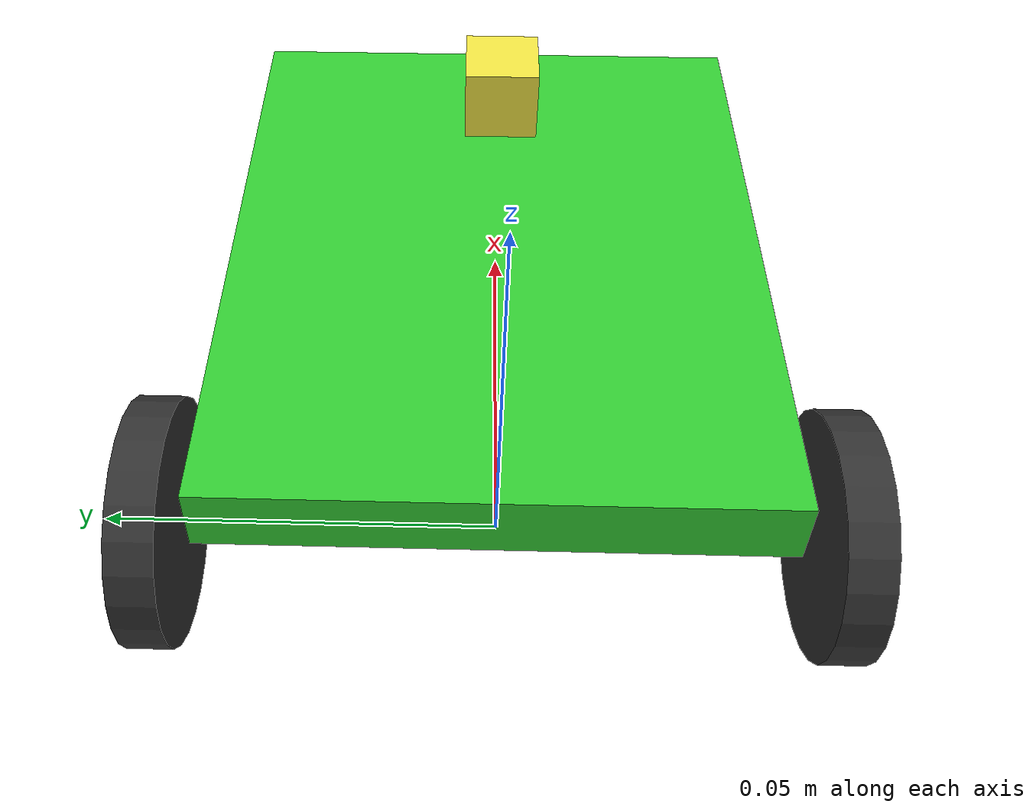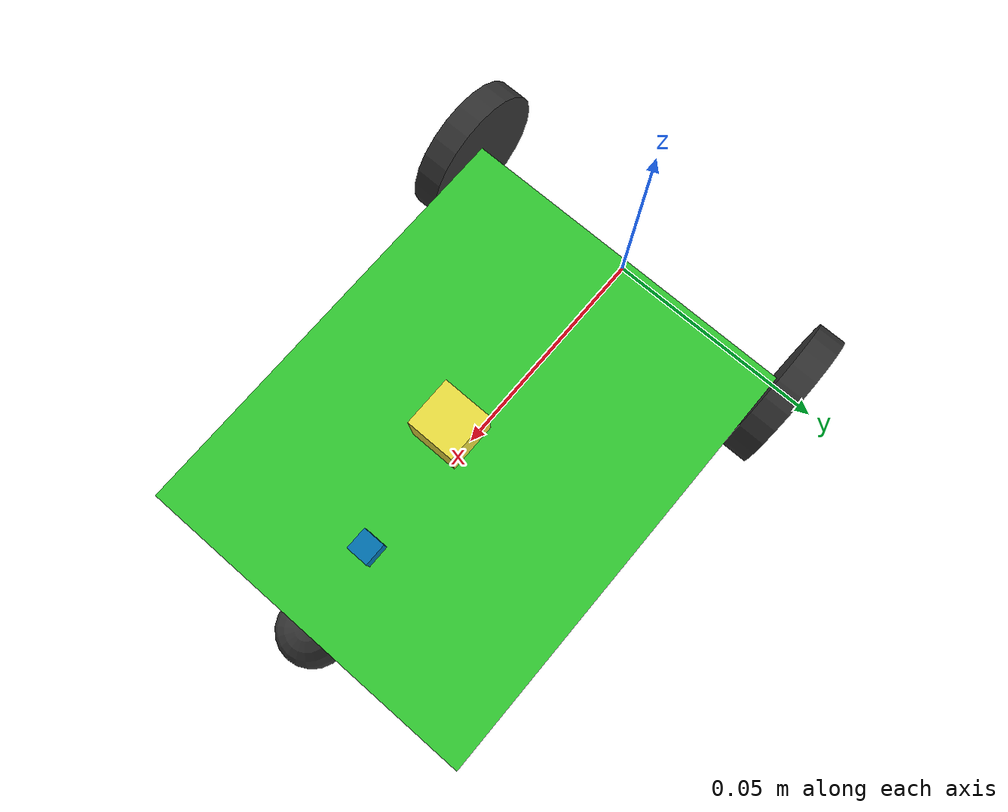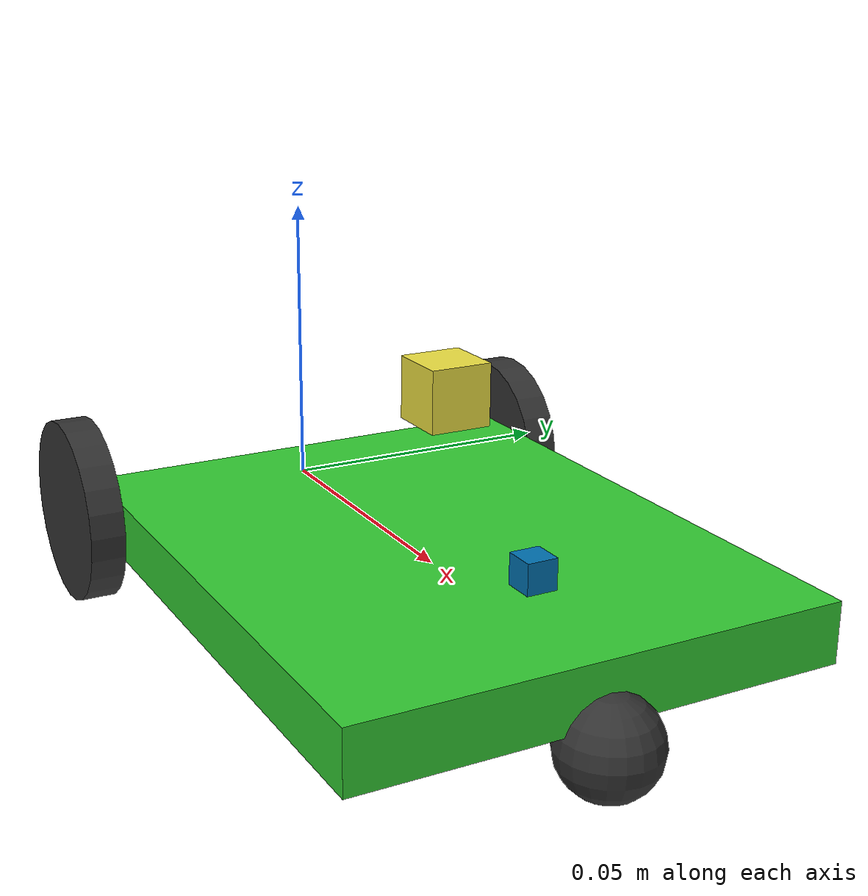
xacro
<?xml version="1.0"?>
<robot name="rosbot"
    xmlns:xacro="http://www.ros.org/wiki/xacro">
    <!-- INCLUDES -->
    <xacro:include filename="$(find rosbot)/urdf/parameters.xacro" />
    <!-- BASE LINK -->
    <link name="base_link">
        <material name="orange"/>
        <!-- pose and inertial -->
        <pose>0 0 0 0 0 0</pose>
        <inertial>
            <origin rpy="0 0 0" xyz="${base_size_x/2} 0 0"/>
            <mass value="${base_mass}"/>
            <xacro:box_inertia mass="${base_mass}" x="${base_size_x}" y="${base_size_y}" z="${base_size_z}"/>
        </inertial>
        <!-- body -->
        <collision name="base_front_collision">
            <origin rpy="0 0 0" xyz="${base_size_x/2} 0 0"/>
            <geometry>
                <box size="${base_size_x} ${base_size_y} ${base_size_z}"/>
            </geometry>
        </collision>
        <visual>
            <origin rpy="0 0 0" xyz="${base_size_x/2} 0 0"/>
            <geometry>
                <box size="${base_size_x} ${base_size_y} ${base_size_z}"/>
            </geometry>
            <material name="green"/>
        </visual>
        <!-- caster front -->
        <collision name="caster_front_collision">
            <origin rpy=" 0 0 0" xyz="${base_size_x} 0 ${-wheel_radius/2}"/>
            <geometry>
                <sphere radius="${wheel_radius/2}"/>
            </geometry>
            <contact_coefficients/>
            <surface>
                <contact>
                    <ode>
                        <kp>${caster_kp}</kp>
                        <kd>${caster_kd}</kd>
                    </ode>
                </contact>
                <friction>
                    <ode>
                        <mu>${caster_mu}</mu>
                        <mu2>${caster_mu2}</mu2>
                        <slip1>${caster_slip1}</slip1>
                        <slip2>${caster_slip2}</slip2>
                    </ode>
                </friction>
            </surface>
        </collision>
        <visual>
            <origin rpy=" 0 0 0" xyz="${base_size_x} 0 ${-wheel_radius/2}"/>
            <geometry>
                <sphere radius="${wheel_radius/2}"/>
            </geometry>
            <material name="gray"/>
        </visual>
    </link>
    <!-- LEFT WHEEL LINK -->
    <link name="left_wheel_link">
        <inertial>
            <mass value="${wheel_mass}"/>
            <origin rpy="0 1.5707 1.5707" xyz="0 0 0"/>
            <xacro:cylinder_inertia mass="${wheel_mass}" r="${wheel_radius}" l="${wheel_width}"/>
        </inertial>
        <collision name="left_wheel_collision">
            <origin rpy="0 1.5707 1.5707" xyz="0 0 0"/>
            <geometry>
                <cylinder radius="${wheel_radius}" length="${wheel_width}"/>
            </geometry>
            <surface>
                <contact>
                    <ode>
                        <kp>${wheel_kp}</kp>
                        <kd>${wheel_kd}</kd>
                    </ode>
                </contact>
                <friction>
                    <ode>
                        <mu>${wheel_mu}</mu>
                        <mu2>${wheel_mu2}</mu2>
                        <slip1>${wheel_slip1}</slip1>
                        <slip2>${wheel_slip2}</slip2>
                    </ode>
                </friction>
            </surface>
        </collision>
        <visual>
            <origin rpy="0 1.5707 1.5707" xyz="0 0 0"/>
            <geometry>
                <cylinder radius="${wheel_radius}" length="${wheel_width}"/>
            </geometry>
            <material name="gray"/>
        </visual>
    </link>
    <!-- LEFT WHEEL JOINT -->
    <joint name="left_motor" type="continuous">
        <origin rpy="0 0 0" xyz="0.0 ${base_size_y/2+wheel_width/2} 0.0"/>
        <child link="left_wheel_link"/>
        <parent link="base_link"/>
        <axis rpy="0 0 0" xyz="0 1 0"/>
        <dynamics damping="${motor_damping}" friction="${motor_friction}"/>
    </joint>
    <!-- RIGHT WHEEL LINK -->
    <link name="right_wheel_link">
        <inertial>
            <mass value="${wheel_mass}"/>
            <origin rpy="0 1.5707 1.5707" xyz="0 0 0"/>
            <xacro:cylinder_inertia mass="${wheel_mass}" r="${wheel_radius}" l="${wheel_width}"/>
        </inertial>
        <collision name="right_wheel_collision">
            <origin rpy="0 1.5707 1.5707" xyz="0 0 0"/>
            <geometry>
                <cylinder radius="${wheel_radius}" length="${wheel_width}"/>
            </geometry>
            <surface>
                <contact>
                    <ode>
                        <kp>${wheel_kp}</kp>
                        <kd>${wheel_kd}</kd>
                    </ode>
                </contact>
                <friction>
                    <ode>
                        <mu>${wheel_mu}</mu>
                        <mu2>${wheel_mu2}</mu2>
                        <slip1>${wheel_slip1}</slip1>
                        <slip2>${wheel_slip2}</slip2>
                    </ode>
                </friction>
            </surface>
        </collision>
        <visual>
            <origin rpy="0 1.5707 1.5707" xyz="0 0 0"/>
            <geometry>
                <cylinder radius="${wheel_radius}" length="${wheel_width}"/>
            </geometry>
            <material name="gray"/>
        </visual>
    </link>
    <!-- RIGHT WHEEL JOINT -->
    <joint name="right_motor" type="continuous">
        <origin rpy="0 0 0" xyz="0 ${-base_size_y/2-wheel_width/2} 0"/>
        <child link="right_wheel_link"/>
        <parent link="base_link"/>
        <axis rpy="0 0 0" xyz="0 1 0"/>
        <dynamics damping="${motor_damping}" friction="${motor_friction}"/>
    </joint>
    <!-- TRANSMISSIONS -->
    <transmission name="left_motor_transmission">
        <type>transmission_interface/SimpleTransmission</type>
        <joint name="left_motor">
            <hardwareInterface>hardware_interface/EffortJointInterface</hardwareInterface>
        </joint>
        <actuator name="left_motor">
            <hardwareInterface>EffortJointInterface</hardwareInterface>
            <mechanicalReduction>1</mechanicalReduction>
        </actuator>
    </transmission>
    <transmission name="right_motor_transmission">
        <type>transmission_interface/SimpleTransmission</type>
        <joint name="right_motor">
            <hardwareInterface>hardware_interface/EffortJointInterface</hardwareInterface>
        </joint>
        <actuator name="right_motor">
            <hardwareInterface>EffortJointInterface</hardwareInterface>
            <mechanicalReduction>1</mechanicalReduction>
        </actuator>
    </transmission>
    <!-- GAZEBO CONTROL -->
    <gazebo>
        <plugin name="differential_drive_controller" filename="libgazebo_ros_diff_drive.so">
            <rosDebugLevel>Debug</rosDebugLevel>
            <publishWheelTF>false</publishWheelTF>
            <robotNamespace>/</robotNamespace>
            <publishTf>1</publishTf>
            <publishWheelJointState>false</publishWheelJointState>
            <alwaysOn>true</alwaysOn>
            <updateRate>100.0</updateRate>
            <leftJoint>left_motor</leftJoint>
            <rightJoint>right_motor</rightJoint>
            <wheelSeparation>${base_size_y+wheel_width}</wheelSeparation>
            <wheelDiameter>${2*wheel_radius}</wheelDiameter>
            <broadcastTF>1</broadcastTF>
            <wheelTorque>0.1</wheelTorque>
            <wheelAcceleration>10</wheelAcceleration>
            <commandTopic>cmd_vel</commandTopic>
            <odometryFrame>odom</odometryFrame>
            <odometryTopic>odom</odometryTopic>
            <pose_covariance_diagonal>[1.0, 1.0, 0.0, 0.0, 0.0, 1.0]</pose_covariance_diagonal>
            <twist_covariance_diagonal>[0.01, 0.0, 0.0, 0.0, 0.0, 0.1]</twist_covariance_diagonal>
            <gaussianNoise>0.05</gaussianNoise>
            <robotBaseFrame>base_link</robotBaseFrame>
            <legacyMode>false</legacyMode>
            <publishOdomTF>true</publishOdomTF>
            <odometrySource>world</odometrySource>
        </plugin>
    </gazebo>
    <!-- GAZEBO LIDAR -->
    <link name="lidar_link">
        <visual>
            <origin xyz="0 0 0" rpy="0 0 0"/>
            <geometry>
                <box size="0.01 0.01 0.01"/>
            </geometry>
        </visual>
    </link>
    <joint name="laser_joint" type="fixed">
        <axis xyz="0 1 0" />
        <origin xyz="0.054 0.0 0.030" rpy="0 0 0"/>
        <parent link="base_link"/>
        <child link="lidar_link"/>
    </joint>
    <gazebo reference="lidar_link">
        <sensor type="gpu_ray" name="head_hokuyo_sensor">
            <pose>0 0 0 0 0 0</pose>
            <visualize>true</visualize>
            <update_rate>10</update_rate>
            <ray>
                <scan>
                    <horizontal>
                        <samples>180</samples>
                        <resolution>1</resolution>
                        <min_angle>-1.5717</min_angle>
                        <max_angle>1.5717</max_angle>
                    </horizontal>
                </scan>
                <range>
                    <min>0.05</min>
                    <max>2.0</max>
                    <resolution>0.001</resolution>
                </range>
                <noise>
                    <type>gaussian</type>
                    <mean>0.0</mean>
                    <stddev>0.01</stddev>
                </noise>
            </ray>
            <plugin name="gazebo_ros_head_hokuyo_controller" filename="libgazebo_ros_gpu_laser.so">
                <topicName>scan</topicName>
                <frameName>lidar_link</frameName>
            </plugin>
        </sensor>
    </gazebo>
    <!-- GAZEBO IMU -->
    <link name="imu_link">
        <inertial>
            <mass value="0.001" />
            <origin xyz="0 0 0" />
            <inertia ixx="0.0" ixy="0.0" ixz="0.0" iyy="0.0" iyz="0.0" izz="0.0" />
        </inertial>
        <visual>
            <origin xyz="0 0 0" rpy="0 0 0" />
            <geometry>
                <box size = "0.005 0.005 0.005"/>
            </geometry>
        </visual>
        <collision>
            <geometry>
                <box size = "0.005 0.005 0.005"/>
            </geometry>
        </collision>
    </link>

    <joint name="imu_joint" type="fixed">
        <axis xyz="0 0 0"/>
        <origin xyz="0.080 0 0.01" rpy="0 0 0" />
        <parent link="base_link"/>
        <child link="imu_link" />
    </joint>

    <gazebo>
        <plugin name="imu_plugin" filename="libgazebo_ros_imu.so">
            <alwaysOn>true</alwaysOn>
            <bodyName>imu_link</bodyName>
            <frameName>base_link</frameName>
            <topicName>imu</topicName>
            <serviceName>imu_service</serviceName>
            <gaussianNoise>0.01</gaussianNoise>
            <updateRate>100.0</updateRate>
        </plugin>
    </gazebo>
    <gazebo reference="base_link">
        <material>Gazebo/Green</material>
    </gazebo>
    <gazebo reference="left_wheel_link">
        <material>Gazebo/DarkGrey</material>
    </gazebo>
    <gazebo reference="right_wheel_link">
        <material>Gazebo/DarkGrey</material>
    </gazebo>
</robot>

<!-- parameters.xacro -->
<robot name="triglav"
    xmlns:xacro="http://www.ros.org/wiki/xacro">
    <!-- CYLINDER INERTIA -->
    <xacro:macro name="cylinder_inertia" params="mass r l">
        <inertia ixx="${mass*(3*r*r+l*l)/12}" ixy = "0" ixz = "0" iyy="${mass*(3*r*r+l*l)/12}" iyz = "0" izz="${mass*(r*r)/2}" />
    </xacro:macro>
    <!-- BOX INERTIA -->
    <xacro:macro name="box_inertia" params="mass x y z">
        <inertia ixx="${mass*(y*y+z*z)/12}" ixy = "0" ixz = "0" iyy="${mass*(x*x+z*z)/12}" iyz = "0" izz="${mass*(x*x+y*y)/12}" />
    </xacro:macro>
    <!-- BASE INERTIA -->
    <xacro:property name="base_mass" value="0.150" />
    <xacro:property name="base_size_x" value="0.10" />
    <xacro:property name="base_size_y" value="0.08" />
    <xacro:property name="base_size_z" value="0.01" />
    <!-- CASTER COLLISION -->
    <xacro:property name="caster_kp" value="10000000" />
    <xacro:property name="caster_kd" value="1.0" />
    <xacro:property name="caster_mu" value="0.0" />
    <xacro:property name="caster_mu2" value="0.0" />
    <xacro:property name="caster_slip1" value="1.0" />
    <xacro:property name="caster_slip2" value="1.0" />
    <!-- WHEEL INERTIA -->
    <xacro:property name="wheel_mass" value="0.100" />
    <xacro:property name="wheel_radius" value="0.016" />
    <xacro:property name="wheel_width" value="0.006" />
    <!-- WHEEL COLLISION -->
    <xacro:property name="wheel_kp" value="10000000" />
    <xacro:property name="wheel_kd" value="1.0" />
    <xacro:property name="wheel_mu" value="1.0" />
    <xacro:property name="wheel_mu2" value="1.0" />
    <xacro:property name="wheel_slip1" value="0.0" />
    <xacro:property name="wheel_slip2" value="0.0" />
    <!-- WHEEL JOINT -->
    <xacro:property name="motor_damping" value="0.000" />
    <xacro:property name="motor_friction" value="0.00000" />

    <material name="gray">
        <color rgba="0.2 0.2 0.2 1"/>
    </material>

    <material name="green">
        <color rgba="0.2 0.8 0.2 1"/>
    </material>
</robot>
